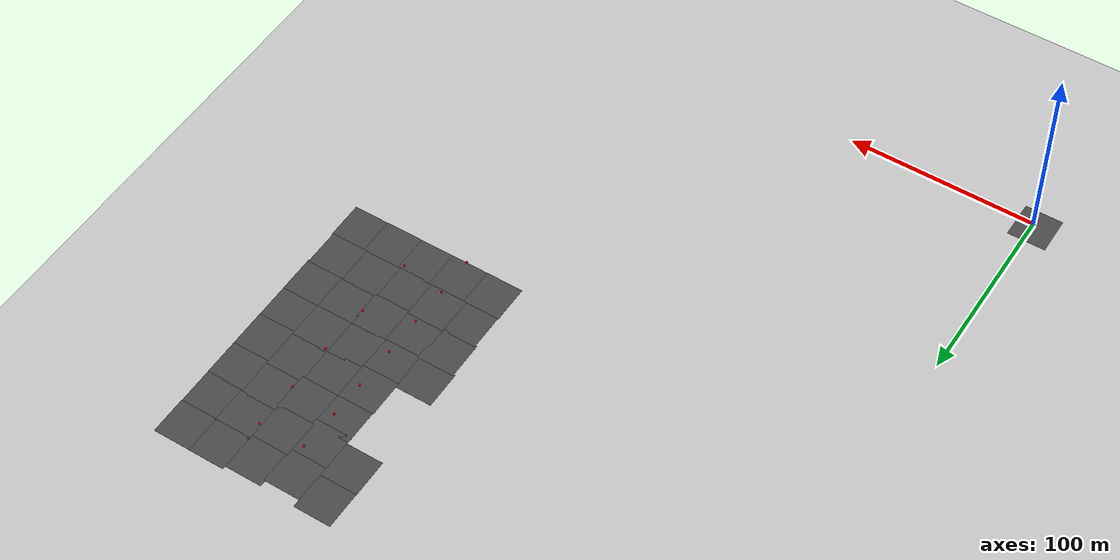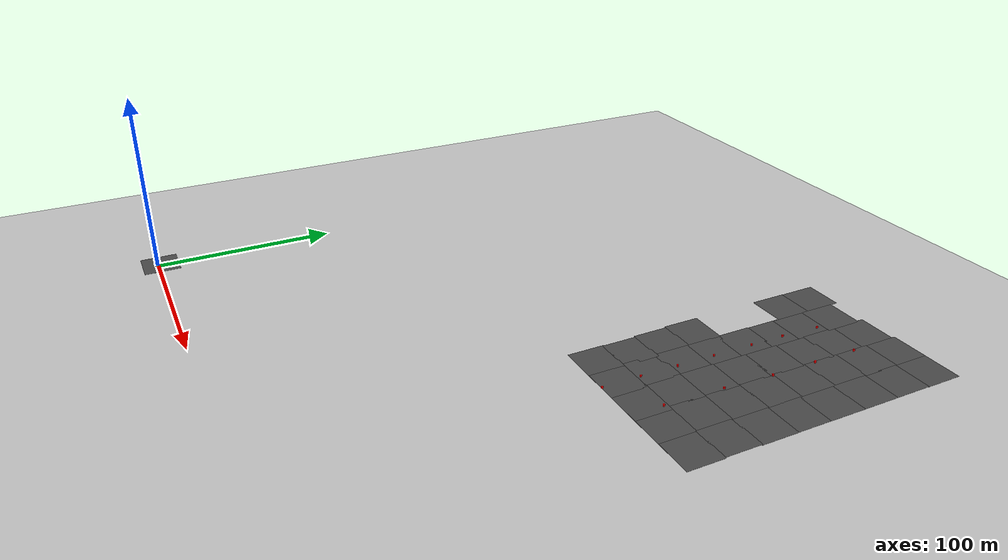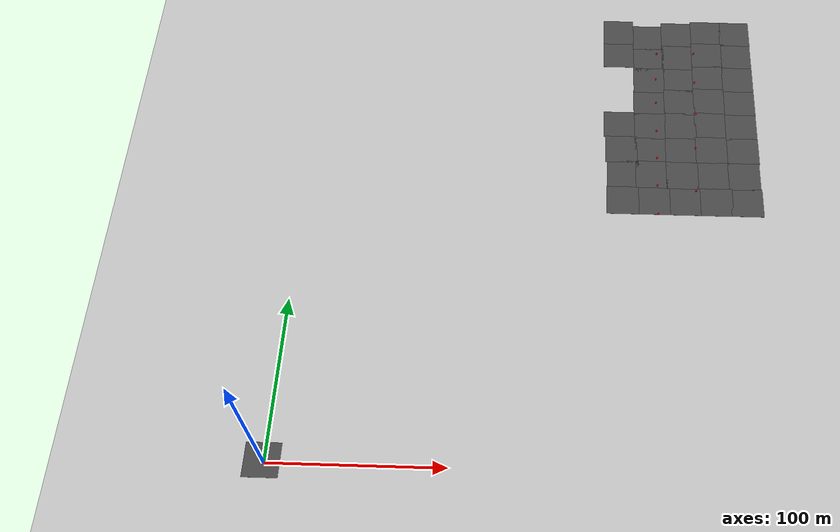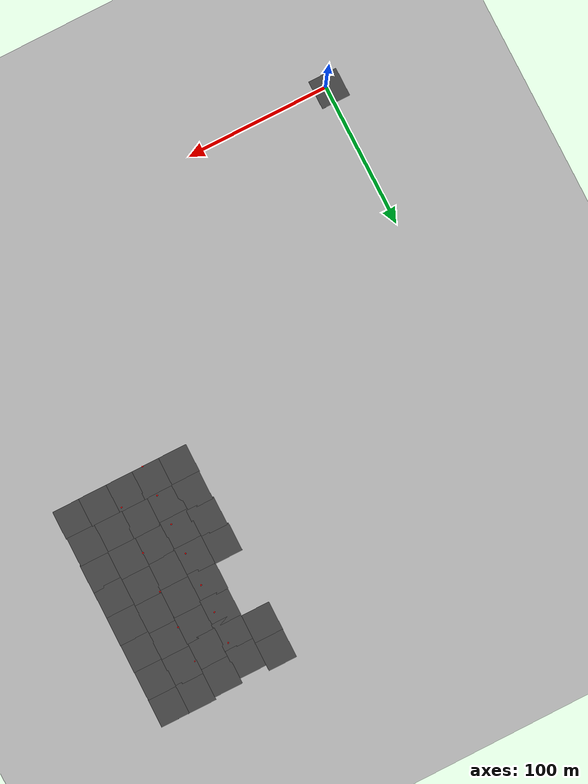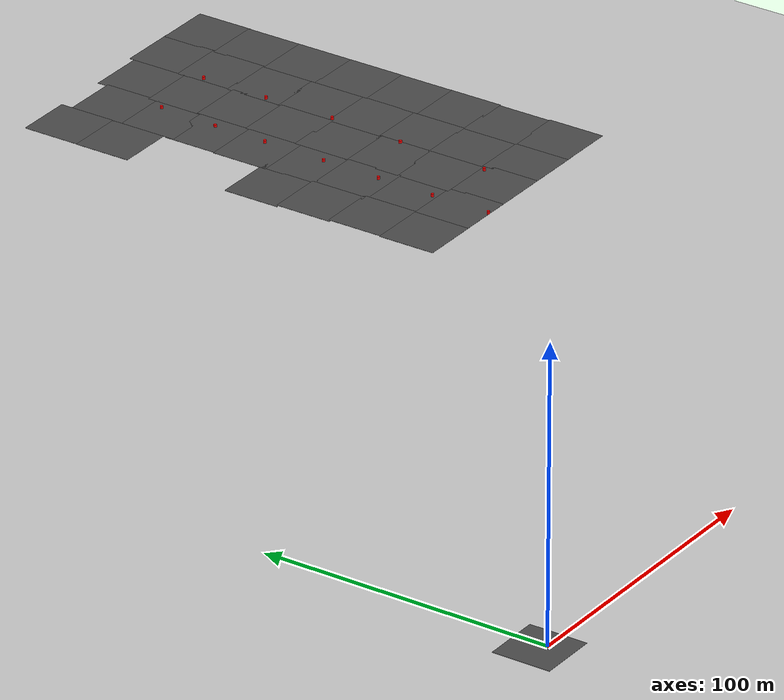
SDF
<sdf version="1.6">
 <world name="default">
  <model name="ground_plane">
   <static>1</static>
   <link name="link">
    <collision name="collision">
     <geometry><plane><normal>0 0 1</normal><size>100 100</size></plane></geometry>
     <surface>
      <contact><collide_bitmask>65535</collide_bitmask></contact>
      <friction><ode><mu>100</mu><mu2>50</mu2></ode></friction>
     </surface>
    </collision>
    <visual name="visual">
     <cast_shadows>0</cast_shadows>
     <geometry><plane><normal>0 0 1</normal><size>100 100</size></plane></geometry>
     <material>
      <script><uri>file://media/materials/scripts/gazebo.material</uri><name>Gazebo/Grey</name></script>
     </material>
    </visual>
   </link>
  </model>
  <model name="asphalt_plane">
   <static>1</static>
   <link name="link">
    <collision name="collision"><geometry><box><size>20 20 0.1</size></box></geometry></collision>
    <visual name="visual">
     <cast_shadows>0</cast_shadows>
     <geometry><box><size>20 20 0.1</size></box></geometry>
     <material>
      <script>
       <uri>model://asphalt_plane/materials/scripts</uri>
       <uri>model://asphalt_plane/materials/textures</uri>
       <name>vrc/asphalt</name>
      </script>
     </material>
    </visual>
   </link>
   <pose>-1.68563 1.69754 0 0 -0 0</pose>
  </model>
  <model name="asphalt_plane_204">
   <static>1</static>
   <link name="link">
    <collision name="collision"><geometry><box><size>20 20 0.1</size></box></geometry></collision>
    <visual name="visual">
     <cast_shadows>0</cast_shadows>
     <geometry><box><size>20 20 0.1</size></box></geometry>
     <material>
      <script>
       <uri>model://asphalt_plane/materials/scripts</uri>
       <uri>model://asphalt_plane/materials/textures</uri>
       <name>vrc/asphalt</name>
      </script>
     </material>
    </visual>
   </link>
   <pose>273.638 175.74 0 0 -0 0</pose>
  </model>
  <model name="asphalt_plane_205">
   <static>1</static>
   <link name="link">
    <collision name="collision"><geometry><box><size>20 20 0.1</size></box></geometry></collision>
    <visual name="visual">
     <cast_shadows>0</cast_shadows>
     <geometry><box><size>20 20 0.1</size></box></geometry>
     <material>
      <script>
       <uri>model://asphalt_plane/materials/scripts</uri>
       <uri>model://asphalt_plane/materials/textures</uri>
       <name>vrc/asphalt</name>
      </script>
     </material>
    </visual>
   </link>
   <pose>254.87 175.653 0 0 -0 0</pose>
  </model>
  <model name="asphalt_plane_206">
   <static>1</static>
   <link name="link">
    <collision name="collision"><geometry><box><size>20 20 0.1</size></box></geometry></collision>
    <visual name="visual">
     <cast_shadows>0</cast_shadows>
     <geometry><box><size>20 20 0.1</size></box></geometry>
     <material>
      <script>
       <uri>model://asphalt_plane/materials/scripts</uri>
       <uri>model://asphalt_plane/materials/textures</uri>
       <name>vrc/asphalt</name>
      </script>
     </material>
    </visual>
   </link>
   <pose>236.036 175.659 0 0 -0 0</pose>
  </model>
  <model name="asphalt_plane_207">
   <static>1</static>
   <link name="link">
    <collision name="collision"><geometry><box><size>20 20 0.1</size></box></geometry></collision>
    <visual name="visual">
     <cast_shadows>0</cast_shadows>
     <geometry><box><size>20 20 0.1</size></box></geometry>
     <material>
      <script>
       <uri>model://asphalt_plane/materials/scripts</uri>
       <uri>model://asphalt_plane/materials/textures</uri>
       <name>vrc/asphalt</name>
      </script>
     </material>
    </visual>
   </link>
   <pose>216.687 175.679 0 0 -0 0</pose>
  </model>
  <model name="asphalt_plane_208">
   <static>1</static>
   <link name="link">
    <collision name="collision"><geometry><box><size>20 20 0.1</size></box></geometry></collision>
    <visual name="visual">
     <cast_shadows>0</cast_shadows>
     <geometry><box><size>20 20 0.1</size></box></geometry>
     <material>
      <script>
       <uri>model://asphalt_plane/materials/scripts</uri>
       <uri>model://asphalt_plane/materials/textures</uri>
       <name>vrc/asphalt</name>
      </script>
     </material>
    </visual>
   </link>
   <pose>196.83 175.645 0 0 -0 0</pose>
  </model>
  <model name="asphalt_plane_223">
   <static>1</static>
   <link name="link">
    <collision name="collision"><geometry><box><size>20 20 0.1</size></box></geometry></collision>
    <visual name="visual">
     <cast_shadows>0</cast_shadows>
     <geometry><box><size>20 20 0.1</size></box></geometry>
     <material>
      <script>
       <uri>model://asphalt_plane/materials/scripts</uri>
       <uri>model://asphalt_plane/materials/textures</uri>
       <name>vrc/asphalt</name>
      </script>
     </material>
    </visual>
   </link>
   <pose>273.139 195.128 0 0 -0 0</pose>
  </model>
  <model name="asphalt_plane_224">
   <static>1</static>
   <link name="link">
    <collision name="collision"><geometry><box><size>20 20 0.1</size></box></geometry></collision>
    <visual name="visual">
     <cast_shadows>0</cast_shadows>
     <geometry><box><size>20 20 0.1</size></box></geometry>
     <material>
      <script>
       <uri>model://asphalt_plane/materials/scripts</uri>
       <uri>model://asphalt_plane/materials/textures</uri>
       <name>vrc/asphalt</name>
      </script>
     </material>
    </visual>
   </link>
   <pose>273.573 214.402 0 0 -0 0</pose>
  </model>
  <model name="asphalt_plane_225">
   <static>1</static>
   <link name="link">
    <collision name="collision"><geometry><box><size>20 20 0.1</size></box></geometry></collision>
    <visual name="visual">
     <cast_shadows>0</cast_shadows>
     <geometry><box><size>20 20 0.1</size></box></geometry>
     <material>
      <script>
       <uri>model://asphalt_plane/materials/scripts</uri>
       <uri>model://asphalt_plane/materials/textures</uri>
       <name>vrc/asphalt</name>
      </script>
     </material>
    </visual>
   </link>
   <pose>273.498 233.108 0 0 -0 0</pose>
  </model>
  <model name="asphalt_plane_226">
   <static>1</static>
   <link name="link">
    <collision name="collision"><geometry><box><size>20 20 0.1</size></box></geometry></collision>
    <visual name="visual">
     <cast_shadows>0</cast_shadows>
     <geometry><box><size>20 20 0.1</size></box></geometry>
     <material>
      <script>
       <uri>model://asphalt_plane/materials/scripts</uri>
       <uri>model://asphalt_plane/materials/textures</uri>
       <name>vrc/asphalt</name>
      </script>
     </material>
    </visual>
   </link>
   <pose>273.571 252.532 0 0 -0 0</pose>
  </model>
  <model name="asphalt_plane_227">
   <static>1</static>
   <link name="link">
    <collision name="collision"><geometry><box><size>20 20 0.1</size></box></geometry></collision>
    <visual name="visual">
     <cast_shadows>0</cast_shadows>
     <geometry><box><size>20 20 0.1</size></box></geometry>
     <material>
      <script>
       <uri>model://asphalt_plane/materials/scripts</uri>
       <uri>model://asphalt_plane/materials/textures</uri>
       <name>vrc/asphalt</name>
      </script>
     </material>
    </visual>
   </link>
   <pose>273.546 272.264 0 0 -0 0</pose>
  </model>
  <model name="asphalt_plane_228">
   <static>1</static>
   <link name="link">
    <collision name="collision"><geometry><box><size>20 20 0.1</size></box></geometry></collision>
    <visual name="visual">
     <cast_shadows>0</cast_shadows>
     <geometry><box><size>20 20 0.1</size></box></geometry>
     <material>
      <script>
       <uri>model://asphalt_plane/materials/scripts</uri>
       <uri>model://asphalt_plane/materials/textures</uri>
       <name>vrc/asphalt</name>
      </script>
     </material>
    </visual>
   </link>
   <pose>273.504 291.986 0 0 -0 0</pose>
  </model>
  <model name="asphalt_plane_229">
   <static>1</static>
   <link name="link">
    <collision name="collision"><geometry><box><size>20 20 0.1</size></box></geometry></collision>
    <visual name="visual">
     <cast_shadows>0</cast_shadows>
     <geometry><box><size>20 20 0.1</size></box></geometry>
     <material>
      <script>
       <uri>model://asphalt_plane/materials/scripts</uri>
       <uri>model://asphalt_plane/materials/textures</uri>
       <name>vrc/asphalt</name>
      </script>
     </material>
    </visual>
   </link>
   <pose>273.661 311.321 0 0 -0 0</pose>
  </model>
  <model name="asphalt_plane_230">
   <static>1</static>
   <link name="link">
    <collision name="collision"><geometry><box><size>20 20 0.1</size></box></geometry></collision>
    <visual name="visual">
     <cast_shadows>0</cast_shadows>
     <geometry><box><size>20 20 0.1</size></box></geometry>
     <material>
      <script>
       <uri>model://asphalt_plane/materials/scripts</uri>
       <uri>model://asphalt_plane/materials/textures</uri>
       <name>vrc/asphalt</name>
      </script>
     </material>
    </visual>
   </link>
   <pose>253.388 195.455 0 0 -0 0</pose>
  </model>
  <model name="asphalt_plane_231">
   <static>1</static>
   <link name="link">
    <collision name="collision"><geometry><box><size>20 20 0.1</size></box></geometry></collision>
    <visual name="visual">
     <cast_shadows>0</cast_shadows>
     <geometry><box><size>20 20 0.1</size></box></geometry>
     <material>
      <script>
       <uri>model://asphalt_plane/materials/scripts</uri>
       <uri>model://asphalt_plane/materials/textures</uri>
       <name>vrc/asphalt</name>
      </script>
     </material>
    </visual>
   </link>
   <pose>253.574 214.921 0 0 -0 0</pose>
  </model>
  <model name="asphalt_plane_232">
   <static>1</static>
   <link name="link">
    <collision name="collision"><geometry><box><size>20 20 0.1</size></box></geometry></collision>
    <visual name="visual">
     <cast_shadows>0</cast_shadows>
     <geometry><box><size>20 20 0.1</size></box></geometry>
     <material>
      <script>
       <uri>model://asphalt_plane/materials/scripts</uri>
       <uri>model://asphalt_plane/materials/textures</uri>
       <name>vrc/asphalt</name>
      </script>
     </material>
    </visual>
   </link>
   <pose>253.784 234.313 0 0 -0 0</pose>
  </model>
  <model name="asphalt_plane_233">
   <static>1</static>
   <link name="link">
    <collision name="collision"><geometry><box><size>20 20 0.1</size></box></geometry></collision>
    <visual name="visual">
     <cast_shadows>0</cast_shadows>
     <geometry><box><size>20 20 0.1</size></box></geometry>
     <material>
      <script>
       <uri>model://asphalt_plane/materials/scripts</uri>
       <uri>model://asphalt_plane/materials/textures</uri>
       <name>vrc/asphalt</name>
      </script>
     </material>
    </visual>
   </link>
   <pose>253.772 253.882 0 0 -0 0</pose>
  </model>
  <model name="asphalt_plane_234">
   <static>1</static>
   <link name="link">
    <collision name="collision"><geometry><box><size>20 20 0.1</size></box></geometry></collision>
    <visual name="visual">
     <cast_shadows>0</cast_shadows>
     <geometry><box><size>20 20 0.1</size></box></geometry>
     <material>
      <script>
       <uri>model://asphalt_plane/materials/scripts</uri>
       <uri>model://asphalt_plane/materials/textures</uri>
       <name>vrc/asphalt</name>
      </script>
     </material>
    </visual>
   </link>
   <pose>253.957 273.086 0 0 -0 0</pose>
  </model>
  <model name="asphalt_plane_235">
   <static>1</static>
   <link name="link">
    <collision name="collision"><geometry><box><size>20 20 0.1</size></box></geometry></collision>
    <visual name="visual">
     <cast_shadows>0</cast_shadows>
     <geometry><box><size>20 20 0.1</size></box></geometry>
     <material>
      <script>
       <uri>model://asphalt_plane/materials/scripts</uri>
       <uri>model://asphalt_plane/materials/textures</uri>
       <name>vrc/asphalt</name>
      </script>
     </material>
    </visual>
   </link>
   <pose>254.122 292.52 0 0 -0 0</pose>
  </model>
  <model name="asphalt_plane_236">
   <static>1</static>
   <link name="link">
    <collision name="collision"><geometry><box><size>20 20 0.1</size></box></geometry></collision>
    <visual name="visual">
     <cast_shadows>0</cast_shadows>
     <geometry><box><size>20 20 0.1</size></box></geometry>
     <material>
      <script>
       <uri>model://asphalt_plane/materials/scripts</uri>
       <uri>model://asphalt_plane/materials/textures</uri>
       <name>vrc/asphalt</name>
      </script>
     </material>
    </visual>
   </link>
   <pose>254.364 311.402 0 0 -0 0</pose>
  </model>
  <model name="asphalt_plane_237">
   <static>1</static>
   <link name="link">
    <collision name="collision"><geometry><box><size>20 20 0.1</size></box></geometry></collision>
    <visual name="visual">
     <cast_shadows>0</cast_shadows>
     <geometry><box><size>20 20 0.1</size></box></geometry>
     <material>
      <script>
       <uri>model://asphalt_plane/materials/scripts</uri>
       <uri>model://asphalt_plane/materials/textures</uri>
       <name>vrc/asphalt</name>
      </script>
     </material>
    </visual>
   </link>
   <pose>234.292 194.998 0 0 -0 0</pose>
  </model>
  <model name="asphalt_plane_238">
   <static>1</static>
   <link name="link">
    <collision name="collision"><geometry><box><size>20 20 0.1</size></box></geometry></collision>
    <visual name="visual">
     <cast_shadows>0</cast_shadows>
     <geometry><box><size>20 20 0.1</size></box></geometry>
     <material>
      <script>
       <uri>model://asphalt_plane/materials/scripts</uri>
       <uri>model://asphalt_plane/materials/textures</uri>
       <name>vrc/asphalt</name>
      </script>
     </material>
    </visual>
   </link>
   <pose>234.373 214.143 0 0 -0 0</pose>
  </model>
  <model name="asphalt_plane_239">
   <static>1</static>
   <link name="link">
    <collision name="collision"><geometry><box><size>20 20 0.1</size></box></geometry></collision>
    <visual name="visual">
     <cast_shadows>0</cast_shadows>
     <geometry><box><size>20 20 0.1</size></box></geometry>
     <material>
      <script>
       <uri>model://asphalt_plane/materials/scripts</uri>
       <uri>model://asphalt_plane/materials/textures</uri>
       <name>vrc/asphalt</name>
      </script>
     </material>
    </visual>
   </link>
   <pose>234.577 233.544 0 0 -0 0</pose>
  </model>
  <model name="asphalt_plane_240">
   <static>1</static>
   <link name="link">
    <collision name="collision"><geometry><box><size>20 20 0.1</size></box></geometry></collision>
    <visual name="visual">
     <cast_shadows>0</cast_shadows>
     <geometry><box><size>20 20 0.1</size></box></geometry>
     <material>
      <script>
       <uri>model://asphalt_plane/materials/scripts</uri>
       <uri>model://asphalt_plane/materials/textures</uri>
       <name>vrc/asphalt</name>
      </script>
     </material>
    </visual>
   </link>
   <pose>234.582 252.448 0 0 -0 0</pose>
  </model>
  <model name="asphalt_plane_241">
   <static>1</static>
   <link name="link">
    <collision name="collision"><geometry><box><size>20 20 0.1</size></box></geometry></collision>
    <visual name="visual">
     <cast_shadows>0</cast_shadows>
     <geometry><box><size>20 20 0.1</size></box></geometry>
     <material>
      <script>
       <uri>model://asphalt_plane/materials/scripts</uri>
       <uri>model://asphalt_plane/materials/textures</uri>
       <name>vrc/asphalt</name>
      </script>
     </material>
    </visual>
   </link>
   <pose>234.801 271.249 0 0 -0 0</pose>
  </model>
  <model name="asphalt_plane_242">
   <static>1</static>
   <link name="link">
    <collision name="collision"><geometry><box><size>20 20 0.1</size></box></geometry></collision>
    <visual name="visual">
     <cast_shadows>0</cast_shadows>
     <geometry><box><size>20 20 0.1</size></box></geometry>
     <material>
      <script>
       <uri>model://asphalt_plane/materials/scripts</uri>
       <uri>model://asphalt_plane/materials/textures</uri>
       <name>vrc/asphalt</name>
      </script>
     </material>
    </visual>
   </link>
   <pose>234.355 289.893 0 0 -0 0</pose>
  </model>
  <model name="asphalt_plane_243">
   <static>1</static>
   <link name="link">
    <collision name="collision"><geometry><box><size>20 20 0.1</size></box></geometry></collision>
    <visual name="visual">
     <cast_shadows>0</cast_shadows>
     <geometry><box><size>20 20 0.1</size></box></geometry>
     <material>
      <script>
       <uri>model://asphalt_plane/materials/scripts</uri>
       <uri>model://asphalt_plane/materials/textures</uri>
       <name>vrc/asphalt</name>
      </script>
     </material>
    </visual>
   </link>
   <pose>234.399 309.694 0 0 -0 0</pose>
  </model>
  <model name="asphalt_plane_244">
   <static>1</static>
   <link name="link">
    <collision name="collision"><geometry><box><size>20 20 0.1</size></box></geometry></collision>
    <visual name="visual">
     <cast_shadows>0</cast_shadows>
     <geometry><box><size>20 20 0.1</size></box></geometry>
     <material>
      <script>
       <uri>model://asphalt_plane/materials/scripts</uri>
       <uri>model://asphalt_plane/materials/textures</uri>
       <name>vrc/asphalt</name>
      </script>
     </material>
    </visual>
   </link>
   <pose>215.172 195.373 0 0 -0 0</pose>
  </model>
  <model name="asphalt_plane_245">
   <static>1</static>
   <link name="link">
    <collision name="collision"><geometry><box><size>20 20 0.1</size></box></geometry></collision>
    <visual name="visual">
     <cast_shadows>0</cast_shadows>
     <geometry><box><size>20 20 0.1</size></box></geometry>
     <material>
      <script>
       <uri>model://asphalt_plane/materials/scripts</uri>
       <uri>model://asphalt_plane/materials/textures</uri>
       <name>vrc/asphalt</name>
      </script>
     </material>
    </visual>
   </link>
   <pose>215.05 213.226 0 0 -0 0</pose>
  </model>
  <model name="asphalt_plane_246">
   <static>1</static>
   <link name="link">
    <collision name="collision"><geometry><box><size>20 20 0.1</size></box></geometry></collision>
    <visual name="visual">
     <cast_shadows>0</cast_shadows>
     <geometry><box><size>20 20 0.1</size></box></geometry>
     <material>
      <script>
       <uri>model://asphalt_plane/materials/scripts</uri>
       <uri>model://asphalt_plane/materials/textures</uri>
       <name>vrc/asphalt</name>
      </script>
     </material>
    </visual>
   </link>
   <pose>215.021 232.761 0 0 -0 0</pose>
  </model>
  <model name="asphalt_plane_247">
   <static>1</static>
   <link name="link">
    <collision name="collision"><geometry><box><size>20 20 0.1</size></box></geometry></collision>
    <visual name="visual">
     <cast_shadows>0</cast_shadows>
     <geometry><box><size>20 20 0.1</size></box></geometry>
     <material>
      <script>
       <uri>model://asphalt_plane/materials/scripts</uri>
       <uri>model://asphalt_plane/materials/textures</uri>
       <name>vrc/asphalt</name>
      </script>
     </material>
    </visual>
   </link>
   <pose>214.79 251.164 0 0 -0 0</pose>
  </model>
  <model name="asphalt_plane_248">
   <static>1</static>
   <link name="link">
    <collision name="collision"><geometry><box><size>20 20 0.1</size></box></geometry></collision>
    <visual name="visual">
     <cast_shadows>0</cast_shadows>
     <geometry><box><size>20 20 0.1</size></box></geometry>
     <material>
      <script>
       <uri>model://asphalt_plane/materials/scripts</uri>
       <uri>model://asphalt_plane/materials/textures</uri>
       <name>vrc/asphalt</name>
      </script>
     </material>
    </visual>
   </link>
   <pose>215.156 270.042 0 0 -0 0</pose>
  </model>
  <model name="asphalt_plane_249">
   <static>1</static>
   <link name="link">
    <collision name="collision"><geometry><box><size>20 20 0.1</size></box></geometry></collision>
    <visual name="visual">
     <cast_shadows>0</cast_shadows>
     <geometry><box><size>20 20 0.1</size></box></geometry>
     <material>
      <script>
       <uri>model://asphalt_plane/materials/scripts</uri>
       <uri>model://asphalt_plane/materials/textures</uri>
       <name>vrc/asphalt</name>
      </script>
     </material>
    </visual>
   </link>
   <pose>215.419 287.014 0 0 -0 0</pose>
  </model>
  <model name="asphalt_plane_250">
   <static>1</static>
   <link name="link">
    <collision name="collision"><geometry><box><size>20 20 0.1</size></box></geometry></collision>
    <visual name="visual">
     <cast_shadows>0</cast_shadows>
     <geometry><box><size>20 20 0.1</size></box></geometry>
     <material>
      <script>
       <uri>model://asphalt_plane/materials/scripts</uri>
       <uri>model://asphalt_plane/materials/textures</uri>
       <name>vrc/asphalt</name>
      </script>
     </material>
    </visual>
   </link>
   <pose>215.26 306.421 0 0 -0 0</pose>
  </model>
  <model name="asphalt_plane_251">
   <static>1</static>
   <link name="link">
    <collision name="collision"><geometry><box><size>20 20 0.1</size></box></geometry></collision>
    <visual name="visual">
     <cast_shadows>0</cast_shadows>
     <geometry><box><size>20 20 0.1</size></box></geometry>
     <material>
      <script>
       <uri>model://asphalt_plane/materials/scripts</uri>
       <uri>model://asphalt_plane/materials/textures</uri>
       <name>vrc/asphalt</name>
      </script>
     </material>
    </visual>
   </link>
   <pose>197.199 195.053 0 0 -0 0</pose>
  </model>
  <model name="asphalt_plane_252">
   <static>1</static>
   <link name="link">
    <collision name="collision"><geometry><box><size>20 20 0.1</size></box></geometry></collision>
    <visual name="visual">
     <cast_shadows>0</cast_shadows>
     <geometry><box><size>20 20 0.1</size></box></geometry>
     <material>
      <script>
       <uri>model://asphalt_plane/materials/scripts</uri>
       <uri>model://asphalt_plane/materials/textures</uri>
       <name>vrc/asphalt</name>
      </script>
     </material>
    </visual>
   </link>
   <pose>196.349 214.13 0 0 -0 0</pose>
  </model>
  <model name="asphalt_plane_253">
   <static>1</static>
   <link name="link">
    <collision name="collision"><geometry><box><size>20 20 0.1</size></box></geometry></collision>
    <visual name="visual">
     <cast_shadows>0</cast_shadows>
     <geometry><box><size>20 20 0.1</size></box></geometry>
     <material>
      <script>
       <uri>model://asphalt_plane/materials/scripts</uri>
       <uri>model://asphalt_plane/materials/textures</uri>
       <name>vrc/asphalt</name>
      </script>
     </material>
    </visual>
   </link>
   <pose>195.464 233.324 0 0 -0 0</pose>
  </model>
  <model name="asphalt_plane_256">
   <static>1</static>
   <link name="link">
    <collision name="collision"><geometry><box><size>20 20 0.1</size></box></geometry></collision>
    <visual name="visual">
     <cast_shadows>0</cast_shadows>
     <geometry><box><size>20 20 0.1</size></box></geometry>
     <material>
      <script>
       <uri>model://asphalt_plane/materials/scripts</uri>
       <uri>model://asphalt_plane/materials/textures</uri>
       <name>vrc/asphalt</name>
      </script>
     </material>
    </visual>
   </link>
   <pose>195.465 290.716 0 0 -0 0</pose>
  </model>
  <model name="asphalt_plane_257">
   <static>1</static>
   <link name="link">
    <collision name="collision"><geometry><box><size>20 20 0.1</size></box></geometry></collision>
    <visual name="visual">
     <cast_shadows>0</cast_shadows>
     <geometry><box><size>20 20 0.1</size></box></geometry>
     <material>
      <script>
       <uri>model://asphalt_plane/materials/scripts</uri>
       <uri>model://asphalt_plane/materials/textures</uri>
       <name>vrc/asphalt</name>
      </script>
     </material>
    </visual>
   </link>
   <pose>195.603 310.488 0 0 -0 0</pose>
  </model>
  <model name="station">
   <link name="link">
    <inertial>
     <mass>1</mass>
     <inertia><ixx>0.145833</ixx><ixy>0</ixy><ixz>0</ixz><iyy>0.145833</iyy><iyz>0</iyz><izz>0.125</izz></inertia>
    </inertial>
    <visual name="visual">
     <geometry><cylinder><radius>0.5</radius><length>1</length></cylinder></geometry>
     <material>
      <script><name>Gazebo/Grey</name><uri>file://media/materials/scripts/gazebo.material</uri></script>
      <shader type="vertex"><normal_map>__default__</normal_map></shader>
      <ambient>1 0 0 0</ambient>
      <diffuse>0 0 0 1</diffuse>
      <specular>0.91 0.01 0.01 1</specular>
      <emissive>0 0 0 1</emissive>
     </material>
    </visual>
    <collision name="collision">
     <geometry><cylinder><radius>0.5</radius><length>1</length></cylinder></geometry>
     <surface>
      <friction>
       <ode><mu>1</mu><mu2>1</mu2><fdir1>0 0 0</fdir1><slip1>0</slip1><slip2>0</slip2></ode>
       <torsional>
        <coefficient>1</coefficient>
        <patch_radius>0</patch_radius>
        <surface_radius>0</surface_radius>
        <use_patch_radius>1</use_patch_radius>
        <ode><slip>0</slip></ode>
       </torsional>
      </friction>
      <bounce><restitution_coefficient>0</restitution_coefficient><threshold>1e+06</threshold></bounce>
      <contact>
       <collide_without_contact>0</collide_without_contact>
       <collide_without_contact_bitmask>1</collide_without_contact_bitmask>
       <collide_bitmask>1</collide_bitmask>
       <ode>
        <soft_cfm>0</soft_cfm>
        <soft_erp>0.2</soft_erp>
        <kp>1e+13</kp>
        <kd>1</kd>
        <max_vel>0.01</max_vel>
        <min_depth>0</min_depth>
       </ode>
       <bullet>
        <split_impulse>1</split_impulse>
        <split_impulse_penetration_threshold>-0.01</split_impulse_penetration_threshold>
        <soft_cfm>0</soft_cfm>
        <soft_erp>0.2</soft_erp>
        <kp>1e+13</kp>
        <kd>1</kd>
       </bullet>
      </contact>
     </surface>
    </collision>
   </link>
   <static>1</static>
   <pose>245.47 293.16 0.619557 0 -0 0</pose>
  </model>
  <model name="station_0">
   <link name="link">
    <inertial>
     <mass>1</mass>
     <inertia><ixx>0.145833</ixx><ixy>0</ixy><ixz>0</ixz><iyy>0.145833</iyy><iyz>0</iyz><izz>0.125</izz></inertia>
    </inertial>
    <visual name="visual">
     <geometry><cylinder><radius>0.5</radius><length>1</length></cylinder></geometry>
     <material>
      <script><name>Gazebo/Grey</name><uri>file://media/materials/scripts/gazebo.material</uri></script>
      <shader type="vertex"><normal_map>__default__</normal_map></shader>
      <ambient>1 0 0 0</ambient>
      <diffuse>0 0 0 1</diffuse>
      <specular>0.91 0.01 0.01 1</specular>
      <emissive>0 0 0 1</emissive>
     </material>
    </visual>
    <collision name="collision">
     <geometry><cylinder><radius>0.5</radius><length>1</length></cylinder></geometry>
     <surface>
      <friction>
       <ode><mu>1</mu><mu2>1</mu2><fdir1>0 0 0</fdir1><slip1>0</slip1><slip2>0</slip2></ode>
       <torsional>
        <coefficient>1</coefficient>
        <patch_radius>0</patch_radius>
        <surface_radius>0</surface_radius>
        <use_patch_radius>1</use_patch_radius>
        <ode><slip>0</slip></ode>
       </torsional>
      </friction>
      <bounce><restitution_coefficient>0</restitution_coefficient><threshold>1e+06</threshold></bounce>
      <contact>
       <collide_without_contact>0</collide_without_contact>
       <collide_without_contact_bitmask>1</collide_without_contact_bitmask>
       <collide_bitmask>1</collide_bitmask>
       <ode>
        <soft_cfm>0</soft_cfm>
        <soft_erp>0.2</soft_erp>
        <kp>1e+13</kp>
        <kd>1</kd>
        <max_vel>0.01</max_vel>
        <min_depth>0</min_depth>
       </ode>
       <bullet>
        <split_impulse>1</split_impulse>
        <split_impulse_penetration_threshold>-0.01</split_impulse_penetration_threshold>
        <soft_cfm>0</soft_cfm>
        <soft_erp>0.2</soft_erp>
        <kp>1e+13</kp>
        <kd>1</kd>
       </bullet>
      </contact>
     </surface>
    </collision>
   </link>
   <static>1</static>
   <pose>245.089 268.772 0.619557 0 -0 0</pose>
  </model>
  <model name="station_1">
   <link name="link">
    <inertial>
     <mass>1</mass>
     <inertia><ixx>0.145833</ixx><ixy>0</ixy><ixz>0</ixz><iyy>0.145833</iyy><iyz>0</iyz><izz>0.125</izz></inertia>
    </inertial>
    <visual name="visual">
     <geometry><cylinder><radius>0.5</radius><length>1</length></cylinder></geometry>
     <material>
      <script><name>Gazebo/Grey</name><uri>file://media/materials/scripts/gazebo.material</uri></script>
      <shader type="vertex"><normal_map>__default__</normal_map></shader>
      <ambient>1 0 0 0</ambient>
      <diffuse>0 0 0 1</diffuse>
      <specular>0.91 0.01 0.01 1</specular>
      <emissive>0 0 0 1</emissive>
     </material>
    </visual>
    <collision name="collision">
     <geometry><cylinder><radius>0.5</radius><length>1</length></cylinder></geometry>
     <surface>
      <friction>
       <ode><mu>1</mu><mu2>1</mu2><fdir1>0 0 0</fdir1><slip1>0</slip1><slip2>0</slip2></ode>
       <torsional>
        <coefficient>1</coefficient>
        <patch_radius>0</patch_radius>
        <surface_radius>0</surface_radius>
        <use_patch_radius>1</use_patch_radius>
        <ode><slip>0</slip></ode>
       </torsional>
      </friction>
      <bounce><restitution_coefficient>0</restitution_coefficient><threshold>1e+06</threshold></bounce>
      <contact>
       <collide_without_contact>0</collide_without_contact>
       <collide_without_contact_bitmask>1</collide_without_contact_bitmask>
       <collide_bitmask>1</collide_bitmask>
       <ode>
        <soft_cfm>0</soft_cfm>
        <soft_erp>0.2</soft_erp>
        <kp>1e+13</kp>
        <kd>1</kd>
        <max_vel>0.01</max_vel>
        <min_depth>0</min_depth>
       </ode>
       <bullet>
        <split_impulse>1</split_impulse>
        <split_impulse_penetration_threshold>-0.01</split_impulse_penetration_threshold>
        <soft_cfm>0</soft_cfm>
        <soft_erp>0.2</soft_erp>
        <kp>1e+13</kp>
        <kd>1</kd>
       </bullet>
      </contact>
     </surface>
    </collision>
   </link>
   <static>1</static>
   <pose>245.02 243.107 0.619557 0 -0 0</pose>
  </model>
  <model name="station_2">
   <link name="link">
    <inertial>
     <mass>1</mass>
     <inertia><ixx>0.145833</ixx><ixy>0</ixy><ixz>0</ixz><iyy>0.145833</iyy><iyz>0</iyz><izz>0.125</izz></inertia>
    </inertial>
    <visual name="visual">
     <geometry><cylinder><radius>0.5</radius><length>1</length></cylinder></geometry>
     <material>
      <script><name>Gazebo/Grey</name><uri>file://media/materials/scripts/gazebo.material</uri></script>
      <shader type="vertex"><normal_map>__default__</normal_map></shader>
      <ambient>1 0 0 0</ambient>
      <diffuse>0 0 0 1</diffuse>
      <specular>0.91 0.01 0.01 1</specular>
      <emissive>0 0 0 1</emissive>
     </material>
    </visual>
    <collision name="collision">
     <geometry><cylinder><radius>0.5</radius><length>1</length></cylinder></geometry>
     <surface>
      <friction>
       <ode><mu>1</mu><mu2>1</mu2><fdir1>0 0 0</fdir1><slip1>0</slip1><slip2>0</slip2></ode>
       <torsional>
        <coefficient>1</coefficient>
        <patch_radius>0</patch_radius>
        <surface_radius>0</surface_radius>
        <use_patch_radius>1</use_patch_radius>
        <ode><slip>0</slip></ode>
       </torsional>
      </friction>
      <bounce><restitution_coefficient>0</restitution_coefficient><threshold>1e+06</threshold></bounce>
      <contact>
       <collide_without_contact>0</collide_without_contact>
       <collide_without_contact_bitmask>1</collide_without_contact_bitmask>
       <collide_bitmask>1</collide_bitmask>
       <ode>
        <soft_cfm>0</soft_cfm>
        <soft_erp>0.2</soft_erp>
        <kp>1e+13</kp>
        <kd>1</kd>
        <max_vel>0.01</max_vel>
        <min_depth>0</min_depth>
       </ode>
       <bullet>
        <split_impulse>1</split_impulse>
        <split_impulse_penetration_threshold>-0.01</split_impulse_penetration_threshold>
        <soft_cfm>0</soft_cfm>
        <soft_erp>0.2</soft_erp>
        <kp>1e+13</kp>
        <kd>1</kd>
       </bullet>
      </contact>
     </surface>
    </collision>
   </link>
   <static>1</static>
   <pose>243.409 215.887 0.619557 0 -0 0</pose>
  </model>
  <model name="station_3">
   <link name="link">
    <inertial>
     <mass>1</mass>
     <inertia><ixx>0.145833</ixx><ixy>0</ixy><ixz>0</ixz><iyy>0.145833</iyy><iyz>0</iyz><izz>0.125</izz></inertia>
    </inertial>
    <visual name="visual">
     <geometry><cylinder><radius>0.5</radius><length>1</length></cylinder></geometry>
     <material>
      <script><name>Gazebo/Grey</name><uri>file://media/materials/scripts/gazebo.material</uri></script>
      <shader type="vertex"><normal_map>__default__</normal_map></shader>
      <ambient>1 0 0 0</ambient>
      <diffuse>0 0 0 1</diffuse>
      <specular>0.91 0.01 0.01 1</specular>
      <emissive>0 0 0 1</emissive>
     </material>
    </visual>
    <collision name="collision">
     <geometry><cylinder><radius>0.5</radius><length>1</length></cylinder></geometry>
     <surface>
      <friction>
       <ode><mu>1</mu><mu2>1</mu2><fdir1>0 0 0</fdir1><slip1>0</slip1><slip2>0</slip2></ode>
       <torsional>
        <coefficient>1</coefficient>
        <patch_radius>0</patch_radius>
        <surface_radius>0</surface_radius>
        <use_patch_radius>1</use_patch_radius>
        <ode><slip>0</slip></ode>
       </torsional>
      </friction>
      <bounce><restitution_coefficient>0</restitution_coefficient><threshold>1e+06</threshold></bounce>
      <contact>
       <collide_without_contact>0</collide_without_contact>
       <collide_without_contact_bitmask>1</collide_without_contact_bitmask>
       <collide_bitmask>1</collide_bitmask>
       <ode>
        <soft_cfm>0</soft_cfm>
        <soft_erp>0.2</soft_erp>
        <kp>1e+13</kp>
        <kd>1</kd>
        <max_vel>0.01</max_vel>
        <min_depth>0</min_depth>
       </ode>
       <bullet>
        <split_impulse>1</split_impulse>
        <split_impulse_penetration_threshold>-0.01</split_impulse_penetration_threshold>
        <soft_cfm>0</soft_cfm>
        <soft_erp>0.2</soft_erp>
        <kp>1e+13</kp>
        <kd>1</kd>
       </bullet>
      </contact>
     </surface>
    </collision>
   </link>
   <static>1</static>
   <pose>242.37 183.336 0.619557 0 -0 0</pose>
  </model>
  <model name="station_22">
   <link name="link">
    <inertial>
     <mass>1</mass>
     <inertia><ixx>0.145833</ixx><ixy>0</ixy><ixz>0</ixz><iyy>0.145833</iyy><iyz>0</iyz><izz>0.125</izz></inertia>
    </inertial>
    <visual name="visual">
     <geometry><cylinder><radius>0.5</radius><length>1</length></cylinder></geometry>
     <material>
      <script><name>Gazebo/Grey</name><uri>file://media/materials/scripts/gazebo.material</uri></script>
      <shader type="vertex"><normal_map>__default__</normal_map></shader>
      <ambient>1 0 0 0</ambient>
      <diffuse>0 0 0 1</diffuse>
      <specular>0.91 0.01 0.01 1</specular>
      <emissive>0 0 0 1</emissive>
     </material>
    </visual>
    <collision name="collision">
     <geometry><cylinder><radius>0.5</radius><length>1</length></cylinder></geometry>
     <surface>
      <friction>
       <ode><mu>1</mu><mu2>1</mu2><fdir1>0 0 0</fdir1><slip1>0</slip1><slip2>0</slip2></ode>
       <torsional>
        <coefficient>1</coefficient>
        <patch_radius>0</patch_radius>
        <surface_radius>0</surface_radius>
        <use_patch_radius>1</use_patch_radius>
        <ode><slip>0</slip></ode>
       </torsional>
      </friction>
      <bounce><restitution_coefficient>0</restitution_coefficient><threshold>1e+06</threshold></bounce>
      <contact>
       <collide_without_contact>0</collide_without_contact>
       <collide_without_contact_bitmask>1</collide_without_contact_bitmask>
       <collide_bitmask>1</collide_bitmask>
       <ode>
        <soft_cfm>0</soft_cfm>
        <soft_erp>0.2</soft_erp>
        <kp>1e+13</kp>
        <kd>1</kd>
        <max_vel>0.01</max_vel>
        <min_depth>0</min_depth>
       </ode>
       <bullet>
        <split_impulse>1</split_impulse>
        <split_impulse_penetration_threshold>-0.01</split_impulse_penetration_threshold>
        <soft_cfm>0</soft_cfm>
        <soft_erp>0.2</soft_erp>
        <kp>1e+13</kp>
        <kd>1</kd>
       </bullet>
      </contact>
     </surface>
    </collision>
   </link>
   <static>1</static>
   <pose>218.399 165.881 0.619557 0 -0 0</pose>
  </model>
  <model name="station_23">
   <link name="link">
    <inertial>
     <mass>1</mass>
     <inertia><ixx>0.145833</ixx><ixy>0</ixy><ixz>0</ixz><iyy>0.145833</iyy><iyz>0</iyz><izz>0.125</izz></inertia>
    </inertial>
    <visual name="visual">
     <geometry><cylinder><radius>0.5</radius><length>1</length></cylinder></geometry>
     <material>
      <script><name>Gazebo/Grey</name><uri>file://media/materials/scripts/gazebo.material</uri></script>
      <shader type="vertex"><normal_map>__default__</normal_map></shader>
      <ambient>1 0 0 0</ambient>
      <diffuse>0 0 0 1</diffuse>
      <specular>0.91 0.01 0.01 1</specular>
      <emissive>0 0 0 1</emissive>
     </material>
    </visual>
    <collision name="collision">
     <geometry><cylinder><radius>0.5</radius><length>1</length></cylinder></geometry>
     <surface>
      <friction>
       <ode><mu>1</mu><mu2>1</mu2><fdir1>0 0 0</fdir1><slip1>0</slip1><slip2>0</slip2></ode>
       <torsional>
        <coefficient>1</coefficient>
        <patch_radius>0</patch_radius>
        <surface_radius>0</surface_radius>
        <use_patch_radius>1</use_patch_radius>
        <ode><slip>0</slip></ode>
       </torsional>
      </friction>
      <bounce><restitution_coefficient>0</restitution_coefficient><threshold>1e+06</threshold></bounce>
      <contact>
       <collide_without_contact>0</collide_without_contact>
       <collide_without_contact_bitmask>1</collide_without_contact_bitmask>
       <collide_bitmask>1</collide_bitmask>
       <ode>
        <soft_cfm>0</soft_cfm>
        <soft_erp>0.2</soft_erp>
        <kp>1e+13</kp>
        <kd>1</kd>
        <max_vel>0.01</max_vel>
        <min_depth>0</min_depth>
       </ode>
       <bullet>
        <split_impulse>1</split_impulse>
        <split_impulse_penetration_threshold>-0.01</split_impulse_penetration_threshold>
        <soft_cfm>0</soft_cfm>
        <soft_erp>0.2</soft_erp>
        <kp>1e+13</kp>
        <kd>1</kd>
       </bullet>
      </contact>
     </surface>
    </collision>
   </link>
   <static>1</static>
   <pose>218.48 186.933 0.619557 0 -0 0</pose>
  </model>
  <model name="station_24">
   <link name="link">
    <inertial>
     <mass>1</mass>
     <inertia><ixx>0.145833</ixx><ixy>0</ixy><ixz>0</ixz><iyy>0.145833</iyy><iyz>0</iyz><izz>0.125</izz></inertia>
    </inertial>
    <visual name="visual">
     <geometry><cylinder><radius>0.5</radius><length>1</length></cylinder></geometry>
     <material>
      <script><name>Gazebo/Grey</name><uri>file://media/materials/scripts/gazebo.material</uri></script>
      <shader type="vertex"><normal_map>__default__</normal_map></shader>
      <ambient>1 0 0 0</ambient>
      <diffuse>0 0 0 1</diffuse>
      <specular>0.91 0.01 0.01 1</specular>
      <emissive>0 0 0 1</emissive>
     </material>
    </visual>
    <collision name="collision">
     <geometry><cylinder><radius>0.5</radius><length>1</length></cylinder></geometry>
     <surface>
      <friction>
       <ode><mu>1</mu><mu2>1</mu2><fdir1>0 0 0</fdir1><slip1>0</slip1><slip2>0</slip2></ode>
       <torsional>
        <coefficient>1</coefficient>
        <patch_radius>0</patch_radius>
        <surface_radius>0</surface_radius>
        <use_patch_radius>1</use_patch_radius>
        <ode><slip>0</slip></ode>
       </torsional>
      </friction>
      <bounce><restitution_coefficient>0</restitution_coefficient><threshold>1e+06</threshold></bounce>
      <contact>
       <collide_without_contact>0</collide_without_contact>
       <collide_without_contact_bitmask>1</collide_without_contact_bitmask>
       <collide_bitmask>1</collide_bitmask>
       <ode>
        <soft_cfm>0</soft_cfm>
        <soft_erp>0.2</soft_erp>
        <kp>1e+13</kp>
        <kd>1</kd>
        <max_vel>0.01</max_vel>
        <min_depth>0</min_depth>
       </ode>
       <bullet>
        <split_impulse>1</split_impulse>
        <split_impulse_penetration_threshold>-0.01</split_impulse_penetration_threshold>
        <soft_cfm>0</soft_cfm>
        <soft_erp>0.2</soft_erp>
        <kp>1e+13</kp>
        <kd>1</kd>
       </bullet>
      </contact>
     </surface>
    </collision>
   </link>
   <static>1</static>
   <pose>218.763 207.651 0.619557 0 -0 0</pose>
  </model>
  <model name="station_25">
   <link name="link">
    <inertial>
     <mass>1</mass>
     <inertia><ixx>0.145833</ixx><ixy>0</ixy><ixz>0</ixz><iyy>0.145833</iyy><iyz>0</iyz><izz>0.125</izz></inertia>
    </inertial>
    <visual name="visual">
     <geometry><cylinder><radius>0.5</radius><length>1</length></cylinder></geometry>
     <material>
      <script><name>Gazebo/Grey</name><uri>file://media/materials/scripts/gazebo.material</uri></script>
      <shader type="vertex"><normal_map>__default__</normal_map></shader>
      <ambient>1 0 0 0</ambient>
      <diffuse>0 0 0 1</diffuse>
      <specular>0.91 0.01 0.01 1</specular>
      <emissive>0 0 0 1</emissive>
     </material>
    </visual>
    <collision name="collision">
     <geometry><cylinder><radius>0.5</radius><length>1</length></cylinder></geometry>
     <surface>
      <friction>
       <ode><mu>1</mu><mu2>1</mu2><fdir1>0 0 0</fdir1><slip1>0</slip1><slip2>0</slip2></ode>
       <torsional>
        <coefficient>1</coefficient>
        <patch_radius>0</patch_radius>
        <surface_radius>0</surface_radius>
        <use_patch_radius>1</use_patch_radius>
        <ode><slip>0</slip></ode>
       </torsional>
      </friction>
      <bounce><restitution_coefficient>0</restitution_coefficient><threshold>1e+06</threshold></bounce>
      <contact>
       <collide_without_contact>0</collide_without_contact>
       <collide_without_contact_bitmask>1</collide_without_contact_bitmask>
       <collide_bitmask>1</collide_bitmask>
       <ode>
        <soft_cfm>0</soft_cfm>
        <soft_erp>0.2</soft_erp>
        <kp>1e+13</kp>
        <kd>1</kd>
        <max_vel>0.01</max_vel>
        <min_depth>0</min_depth>
       </ode>
       <bullet>
        <split_impulse>1</split_impulse>
        <split_impulse_penetration_threshold>-0.01</split_impulse_penetration_threshold>
        <soft_cfm>0</soft_cfm>
        <soft_erp>0.2</soft_erp>
        <kp>1e+13</kp>
        <kd>1</kd>
       </bullet>
      </contact>
     </surface>
    </collision>
   </link>
   <static>1</static>
   <pose>219.145 228.709 0.619557 0 -0 0</pose>
  </model>
  <model name="station_26">
   <link name="link">
    <inertial>
     <mass>1</mass>
     <inertia><ixx>0.145833</ixx><ixy>0</ixy><ixz>0</ixz><iyy>0.145833</iyy><iyz>0</iyz><izz>0.125</izz></inertia>
    </inertial>
    <visual name="visual">
     <geometry><cylinder><radius>0.5</radius><length>1</length></cylinder></geometry>
     <material>
      <script><name>Gazebo/Grey</name><uri>file://media/materials/scripts/gazebo.material</uri></script>
      <shader type="vertex"><normal_map>__default__</normal_map></shader>
      <ambient>1 0 0 0</ambient>
      <diffuse>0 0 0 1</diffuse>
      <specular>0.91 0.01 0.01 1</specular>
      <emissive>0 0 0 1</emissive>
     </material>
    </visual>
    <collision name="collision">
     <geometry><cylinder><radius>0.5</radius><length>1</length></cylinder></geometry>
     <surface>
      <friction>
       <ode><mu>1</mu><mu2>1</mu2><fdir1>0 0 0</fdir1><slip1>0</slip1><slip2>0</slip2></ode>
       <torsional>
        <coefficient>1</coefficient>
        <patch_radius>0</patch_radius>
        <surface_radius>0</surface_radius>
        <use_patch_radius>1</use_patch_radius>
        <ode><slip>0</slip></ode>
       </torsional>
      </friction>
      <bounce><restitution_coefficient>0</restitution_coefficient><threshold>1e+06</threshold></bounce>
      <contact>
       <collide_without_contact>0</collide_without_contact>
       <collide_without_contact_bitmask>1</collide_without_contact_bitmask>
       <collide_bitmask>1</collide_bitmask>
       <ode>
        <soft_cfm>0</soft_cfm>
        <soft_erp>0.2</soft_erp>
        <kp>1e+13</kp>
        <kd>1</kd>
        <max_vel>0.01</max_vel>
        <min_depth>0</min_depth>
       </ode>
       <bullet>
        <split_impulse>1</split_impulse>
        <split_impulse_penetration_threshold>-0.01</split_impulse_penetration_threshold>
        <soft_cfm>0</soft_cfm>
        <soft_erp>0.2</soft_erp>
        <kp>1e+13</kp>
        <kd>1</kd>
       </bullet>
      </contact>
     </surface>
    </collision>
   </link>
   <static>1</static>
   <pose>219.469 251.425 0.619557 0 -0 0</pose>
  </model>
  <model name="station_27">
   <link name="link">
    <inertial>
     <mass>1</mass>
     <inertia><ixx>0.145833</ixx><ixy>0</ixy><ixz>0</ixz><iyy>0.145833</iyy><iyz>0</iyz><izz>0.125</izz></inertia>
    </inertial>
    <visual name="visual">
     <geometry><cylinder><radius>0.5</radius><length>1</length></cylinder></geometry>
     <material>
      <script><name>Gazebo/Grey</name><uri>file://media/materials/scripts/gazebo.material</uri></script>
      <shader type="vertex"><normal_map>__default__</normal_map></shader>
      <ambient>1 0 0 0</ambient>
      <diffuse>0 0 0 1</diffuse>
      <specular>0.91 0.01 0.01 1</specular>
      <emissive>0 0 0 1</emissive>
     </material>
    </visual>
    <collision name="collision">
     <geometry><cylinder><radius>0.5</radius><length>1</length></cylinder></geometry>
     <surface>
      <friction>
       <ode><mu>1</mu><mu2>1</mu2><fdir1>0 0 0</fdir1><slip1>0</slip1><slip2>0</slip2></ode>
       <torsional>
        <coefficient>1</coefficient>
        <patch_radius>0</patch_radius>
        <surface_radius>0</surface_radius>
        <use_patch_radius>1</use_patch_radius>
        <ode><slip>0</slip></ode>
       </torsional>
      </friction>
      <bounce><restitution_coefficient>0</restitution_coefficient><threshold>1e+06</threshold></bounce>
      <contact>
       <collide_without_contact>0</collide_without_contact>
       <collide_without_contact_bitmask>1</collide_without_contact_bitmask>
       <collide_bitmask>1</collide_bitmask>
       <ode>
        <soft_cfm>0</soft_cfm>
        <soft_erp>0.2</soft_erp>
        <kp>1e+13</kp>
        <kd>1</kd>
        <max_vel>0.01</max_vel>
        <min_depth>0</min_depth>
       </ode>
       <bullet>
        <split_impulse>1</split_impulse>
        <split_impulse_penetration_threshold>-0.01</split_impulse_penetration_threshold>
        <soft_cfm>0</soft_cfm>
        <soft_erp>0.2</soft_erp>
        <kp>1e+13</kp>
        <kd>1</kd>
       </bullet>
      </contact>
     </surface>
    </collision>
   </link>
   <static>1</static>
   <pose>219.748 270.808 0.619557 0 -0 0</pose>
  </model>
  <model name="station_28">
   <link name="link">
    <inertial>
     <mass>1</mass>
     <inertia><ixx>0.145833</ixx><ixy>0</ixy><ixz>0</ixz><iyy>0.145833</iyy><iyz>0</iyz><izz>0.125</izz></inertia>
    </inertial>
    <visual name="visual">
     <geometry><cylinder><radius>0.5</radius><length>1</length></cylinder></geometry>
     <material>
      <script><name>Gazebo/Grey</name><uri>file://media/materials/scripts/gazebo.material</uri></script>
      <shader type="vertex"><normal_map>__default__</normal_map></shader>
      <ambient>1 0 0 0</ambient>
      <diffuse>0 0 0 1</diffuse>
      <specular>0.91 0.01 0.01 1</specular>
      <emissive>0 0 0 1</emissive>
     </material>
    </visual>
    <collision name="collision">
     <geometry><cylinder><radius>0.5</radius><length>1</length></cylinder></geometry>
     <surface>
      <friction>
       <ode><mu>1</mu><mu2>1</mu2><fdir1>0 0 0</fdir1><slip1>0</slip1><slip2>0</slip2></ode>
       <torsional>
        <coefficient>1</coefficient>
        <patch_radius>0</patch_radius>
        <surface_radius>0</surface_radius>
        <use_patch_radius>1</use_patch_radius>
        <ode><slip>0</slip></ode>
       </torsional>
      </friction>
      <bounce><restitution_coefficient>0</restitution_coefficient><threshold>1e+06</threshold></bounce>
      <contact>
       <collide_without_contact>0</collide_without_contact>
       <collide_without_contact_bitmask>1</collide_without_contact_bitmask>
       <collide_bitmask>1</collide_bitmask>
       <ode>
        <soft_cfm>0</soft_cfm>
        <soft_erp>0.2</soft_erp>
        <kp>1e+13</kp>
        <kd>1</kd>
        <max_vel>0.01</max_vel>
        <min_depth>0</min_depth>
       </ode>
       <bullet>
        <split_impulse>1</split_impulse>
        <split_impulse_penetration_threshold>-0.01</split_impulse_penetration_threshold>
        <soft_cfm>0</soft_cfm>
        <soft_erp>0.2</soft_erp>
        <kp>1e+13</kp>
        <kd>1</kd>
       </bullet>
      </contact>
     </surface>
    </collision>
   </link>
   <static>1</static>
   <pose>220.862 292.409 0.619557 0 -0 0</pose>
  </model>
 </world>
</sdf>
